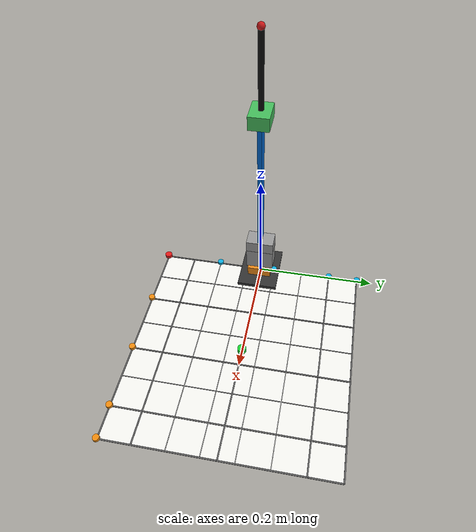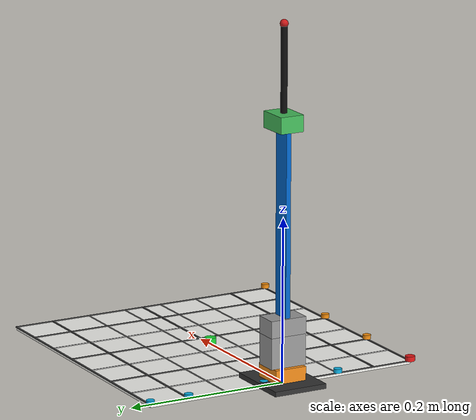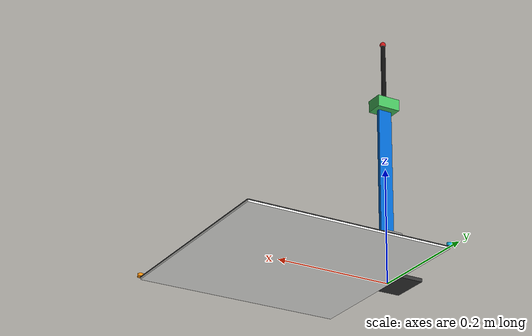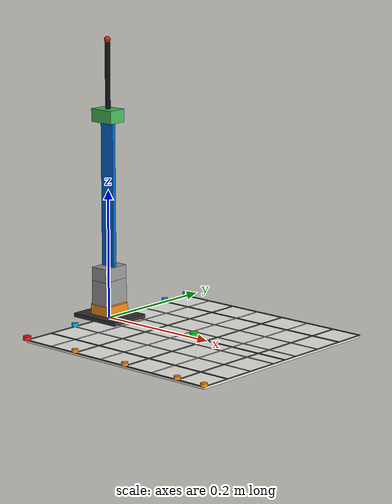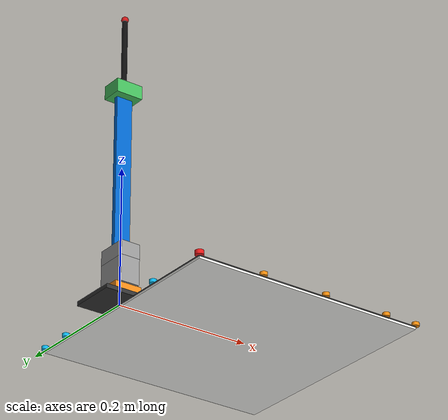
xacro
<?xml version="1.0" encoding="utf-8"?>

<robot name="Robot_2.0" xmlns:xacro="http://ros.org/wiki/xacro">

    <!-- use_ros2_control : 'true'  → include ros2_control hardware tags          -->
    <!-- use_mock_hardware: 'true'  → GenericSystem mock (sim), 'false' → Dynamixel -->
    <xacro:arg name="use_ros2_control"  default="false"/>
    <xacro:arg name="use_mock_hardware" default="false"/>

    <!-- ============ Materials (distinct colours) ============ -->
    <material name="dark_grey"> <color rgba="0.20 0.20 0.20 1.0"/></material>
    <material name="light_grey"><color rgba="0.60 0.60 0.60 1.0"/></material>
    <material name="blue">      <color rgba="0.00 0.40 0.80 1.0"/></material>
    <material name="green">     <color rgba="0.27 0.74 0.36 1.0"/></material>
    <material name="orange">    <color rgba="0.95 0.55 0.10 1.0"/></material>
    <material name="black">     <color rgba="0.05 0.05 0.05 1.0"/></material>
    <material name="red">       <color rgba="0.80 0.10 0.10 1.0"/></material>

    <!-- ============ World anchor ============ -->
    <link name="world"/>
    <joint name="world_to_base" type="fixed">
        <parent link="world"/>
        <child link="base_link"/>
        <origin xyz="0 0 0" rpy="0 0 0"/>
    </joint>

    <!-- ============ base_link : plate + riser + base (yaw) servo ============ -->
    <link name="base_link">
        <inertial>
            <origin xyz="0 0 0.03" rpy="0 0 0"/>
            <mass value="0.18"/>
            <inertia ixx="1.30e-04" iyy="1.30e-04" izz="8.10e-05" ixy="0" iyz="0" ixz="0"/>
        </inertial>
        <!-- base plate -->
        <visual>
            <origin xyz="0 0 0.003" rpy="0 0 0"/>
            <geometry><box size="0.086 0.068 0.006"/></geometry>
            <material name="dark_grey"/>
        </visual>
        <collision>
            <origin xyz="0 0 0.003" rpy="0 0 0"/>
            <geometry><box size="0.086 0.068 0.006"/></geometry>
        </collision>
        <!-- riser between plate and the first servo -->
        <visual>
            <origin xyz="0 0 0.0145" rpy="0 0 0"/>
            <geometry><box size="0.040 0.040 0.017"/></geometry>
            <material name="orange"/>
        </visual>
        <collision>
            <origin xyz="0 0 0.0145" rpy="0 0 0"/>
            <geometry><box size="0.040 0.040 0.017"/></geometry>
        </collision>
        <!-- servo1 body (base yaw motor, fixed part) -->
        <visual>
            <origin xyz="0 0 0.042" rpy="0 0 0"/>
            <geometry><box size="0.0285 0.046 0.0379"/></geometry>
            <material name="light_grey"/>
        </visual>
        <collision>
            <origin xyz="0 0 0.042" rpy="0 0 0"/>
            <geometry><box size="0.0285 0.046 0.0379"/></geometry>
        </collision>
    </link>

    <!-- joint3 : base rotator about Z (top of servo1) -->
    <joint name="joint3" type="revolute">
        <parent link="base_link"/>
        <child link="link1"/>
        <origin xyz="0 0 0.0609" rpy="0 0 0"/>
        <axis xyz="0 0 1"/>
        <limit lower="-1.5707963267948966" upper="1.5707963267948966" effort="1.5" velocity="5.236"/>
        <dynamics damping="0.01" friction="0.05"/>
    </joint>

    <!-- ============ link1 : shoulder servo body (yaws with joint1) ============ -->
    <link name="link1">
        <inertial>
            <origin xyz="0 0 0.0105" rpy="0 0 0"/>
            <mass value="0.05"/>
            <inertia ixx="1.0e-05" iyy="1.0e-05" izz="1.0e-05" ixy="0" iyz="0" ixz="0"/>
        </inertial>
        <visual>
            <origin xyz="0 0 0.0105" rpy="0 0 0"/>
            <geometry><box size="0.0285 0.046 0.021"/></geometry>
            <material name="light_grey"/>
        </visual>
        <collision>
            <origin xyz="0 0 0.0105" rpy="0 0 0"/>
            <geometry><box size="0.0285 0.046 0.021"/></geometry>
        </collision>
    </link>

    <!-- joint1 : arm about Y -->
    <joint name="joint1" type="revolute">
        <parent link="link1"/>
        <child link="link2"/>
        <origin xyz="0 0 0.0209" rpy="0 0 0"/>
        <axis xyz="0 1 0"/>
        <limit lower="-1.5707963267948966" upper="1.5707963267948966" effort="1.5" velocity="5.236"/>
        <dynamics damping="0.01" friction="0.05"/>
    </joint>

    <!-- ============ link2 : arm (box, points up +Z, 224 mm) ============ -->
    <link name="link2">
        <inertial>
            <origin xyz="0 0 0.112" rpy="0 0 0"/>
            <mass value="0.0776"/>
            <inertia ixx="4.71e-04" iyy="4.66e-04" izz="5.04e-06" ixy="0" iyz="0" ixz="0"/>
        </inertial>
        <visual>
            <origin xyz="0 0 0.112" rpy="0 0 0"/>
            <geometry><box size="0.024 0.006 0.224"/></geometry>
            <material name="blue"/>
        </visual>
        <collision>
            <origin xyz="0 0 0.112" rpy="0 0 0"/>
            <geometry><box size="0.024 0.006 0.224"/></geometry>
        </collision>
    </link>

    <!-- joint2 : end effector about Y (tip of the arm) -->
    <joint name="joint2" type="revolute">
        <parent link="link2"/>
        <child link="link3"/>
        <origin xyz="0 0 0.224" rpy="0 0 0"/>
        <axis xyz="0 1 0"/>
        <limit lower="-1.5707963267948966" upper="1.5707963267948966" effort="1.5" velocity="3.142"/>
        <dynamics damping="0.01" friction="0.05"/>
    </joint>

    <!-- ============ link3 : wrist bracket (box) ============ -->
    <link name="link3">
        <inertial>
            <origin xyz="0 0 0.01" rpy="0 0 0"/>
            <mass value="0.0335"/>
            <inertia ixx="3.25e-06" iyy="8.34e-06" izz="9.92e-06" ixy="0" iyz="0" ixz="0"/>
        </inertial>
        <visual>
            <origin xyz="0 0 0.01" rpy="0 0 0"/>
            <geometry><box size="0.040 0.030 0.020"/></geometry>
            <material name="green"/>
        </visual>
        <collision>
            <origin xyz="0 0 0.01" rpy="0 0 0"/>
            <geometry><box size="0.040 0.030 0.020"/></geometry>
        </collision>
    </link>

    <!-- ============ Pen on the end effector ============ -->
    <joint name="joint_marker" type="fixed">
        <parent link="link3"/>
        <child link="marker_link"/>
        <origin xyz="0 0 0.020" rpy="0 0 0"/>
    </joint>

    <link name="marker_link">
        <inertial>
            <origin xyz="0 0 0.0525" rpy="0 0 0"/>
            <mass value="0.005"/>
            <inertia ixx="1e-06" iyy="1e-06" izz="1e-07" ixy="0" iyz="0" ixz="0"/>
        </inertial>
        <visual>
            <origin xyz="0 0 0.0525" rpy="0 0 0"/>
            <geometry><cylinder radius="0.004" length="0.105"/></geometry>
            <material name="black"/>
        </visual>
        <collision>
            <origin xyz="0 0 0.0525" rpy="0 0 0"/>
            <geometry><cylinder radius="0.004" length="0.105"/></geometry>
        </collision>
    </link>

    <joint name="joint_tool" type="fixed">
        <parent link="marker_link"/>
        <child link="end_effector"/>
        <origin xyz="0 0 0.105" rpy="0 0 0"/>
    </joint>

    <link name="end_effector">
        <inertial>
            <origin xyz="0 0 0" rpy="0 0 0"/>
            <mass value="0.001"/>
            <inertia ixx="0" iyy="0" izz="0" ixy="0" iyz="0" ixz="0"/>
        </inertial>
        <visual>
            <origin xyz="0 0 0" rpy="0 0 0"/>
            <geometry><sphere radius="0.005"/></geometry>
            <material name="red"/>
        </visual>
    </link>

    <!-- Drawing board — 350×350 mm workspace (from seminar spec).       -->
    <!-- Board origin = bottom-left corner (closest to robot base).      -->
    <!--   World frame: board spans x[0 .. 0.35], y[-0.175 .. 0.175]    -->
    <!--   Drawing surface is at z=0 (floor level, same as robot base).  -->
    <!-- Grid: 50 mm minor (light grey), 100 mm major (dark grey).       -->
    <!-- Coordinate markers (cylinders, 8 mm dia):                       -->
    <!--   RED   — board origin (0, 0)   = world (0.000, -0.175)         -->
    <!--   ORANGE— X-axis 100 mm steps   = world (0.100, -0.175) …      -->
    <!--   CYAN  — Y-axis 100 mm steps   = world (0.000, -0.075) …      -->
    <!--   GREEN — board centre           = world (0.175,  0.000)         -->
    <link name="drawing_board">
        <!-- ── board surface ────────────────────────────────────────── -->
        <visual>
            <origin xyz="0.175 0 -0.0015" rpy="0 0 0"/>
            <geometry><box size="0.350 0.350 0.003"/></geometry>
            <material name="board_white"><color rgba="0.97 0.97 0.95 1.0"/></material>
        </visual>
        <collision>
            <origin xyz="0.175 0 -0.0015" rpy="0 0 0"/>
            <geometry><box size="0.350 0.350 0.003"/></geometry>
        </collision>

        <!-- ── minor grid lines (50 mm, light grey) ─────────────────── -->
        <!-- lines parallel to Y (at X = 0.05, 0.15, 0.25) -->
        <visual><origin xyz="0.050 0.000 0.0005" rpy="0 0 0"/><geometry><box size="0.001 0.350 0.001"/></geometry><material name="grid_minor"><color rgba="0.75 0.75 0.75 1.0"/></material></visual>
        <visual><origin xyz="0.150 0.000 0.0005" rpy="0 0 0"/><geometry><box size="0.001 0.350 0.001"/></geometry><material name="grid_minor"><color rgba="0.75 0.75 0.75 1.0"/></material></visual>
        <visual><origin xyz="0.250 0.000 0.0005" rpy="0 0 0"/><geometry><box size="0.001 0.350 0.001"/></geometry><material name="grid_minor"><color rgba="0.75 0.75 0.75 1.0"/></material></visual>
        <!-- lines parallel to X (at Y = ±0.075, ±0.025) -->
        <visual><origin xyz="0.175 -0.075 0.0005" rpy="0 0 0"/><geometry><box size="0.350 0.001 0.001"/></geometry><material name="grid_minor"><color rgba="0.75 0.75 0.75 1.0"/></material></visual>
        <visual><origin xyz="0.175 -0.025 0.0005" rpy="0 0 0"/><geometry><box size="0.350 0.001 0.001"/></geometry><material name="grid_minor"><color rgba="0.75 0.75 0.75 1.0"/></material></visual>
        <visual><origin xyz="0.175  0.025 0.0005" rpy="0 0 0"/><geometry><box size="0.350 0.001 0.001"/></geometry><material name="grid_minor"><color rgba="0.75 0.75 0.75 1.0"/></material></visual>
        <visual><origin xyz="0.175  0.075 0.0005" rpy="0 0 0"/><geometry><box size="0.350 0.001 0.001"/></geometry><material name="grid_minor"><color rgba="0.75 0.75 0.75 1.0"/></material></visual>

        <!-- ── major grid lines (100 mm, dark grey) ──────────────────── -->
        <!-- lines parallel to Y (at X = 0, 0.10, 0.20, 0.30, 0.35) -->
        <visual><origin xyz="0.000 0.000 0.0007" rpy="0 0 0"/><geometry><box size="0.002 0.350 0.001"/></geometry><material name="grid_major"><color rgba="0.40 0.40 0.40 1.0"/></material></visual>
        <visual><origin xyz="0.100 0.000 0.0007" rpy="0 0 0"/><geometry><box size="0.002 0.350 0.001"/></geometry><material name="grid_major"><color rgba="0.40 0.40 0.40 1.0"/></material></visual>
        <visual><origin xyz="0.200 0.000 0.0007" rpy="0 0 0"/><geometry><box size="0.002 0.350 0.001"/></geometry><material name="grid_major"><color rgba="0.40 0.40 0.40 1.0"/></material></visual>
        <visual><origin xyz="0.300 0.000 0.0007" rpy="0 0 0"/><geometry><box size="0.002 0.350 0.001"/></geometry><material name="grid_major"><color rgba="0.40 0.40 0.40 1.0"/></material></visual>
        <visual><origin xyz="0.350 0.000 0.0007" rpy="0 0 0"/><geometry><box size="0.002 0.350 0.001"/></geometry><material name="grid_major"><color rgba="0.40 0.40 0.40 1.0"/></material></visual>
        <!-- lines parallel to X (at Y = -0.175, -0.125, 0, 0.125, 0.175) -->
        <visual><origin xyz="0.175 -0.175 0.0007" rpy="0 0 0"/><geometry><box size="0.350 0.002 0.001"/></geometry><material name="grid_major"><color rgba="0.40 0.40 0.40 1.0"/></material></visual>
        <visual><origin xyz="0.175 -0.125 0.0007" rpy="0 0 0"/><geometry><box size="0.350 0.002 0.001"/></geometry><material name="grid_major"><color rgba="0.40 0.40 0.40 1.0"/></material></visual>
        <visual><origin xyz="0.175  0.000 0.0007" rpy="0 0 0"/><geometry><box size="0.350 0.002 0.001"/></geometry><material name="grid_major"><color rgba="0.40 0.40 0.40 1.0"/></material></visual>
        <visual><origin xyz="0.175  0.125 0.0007" rpy="0 0 0"/><geometry><box size="0.350 0.002 0.001"/></geometry><material name="grid_major"><color rgba="0.40 0.40 0.40 1.0"/></material></visual>
        <visual><origin xyz="0.175  0.175 0.0007" rpy="0 0 0"/><geometry><box size="0.350 0.002 0.001"/></geometry><material name="grid_major"><color rgba="0.40 0.40 0.40 1.0"/></material></visual>

        <!-- ── coordinate markers (cylinders, r=4 mm, h=4 mm) ────────── -->
        <!-- RED — board origin (0 mm, 0 mm) = world (0.000, -0.175) -->
        <visual><origin xyz="0.000 -0.175 0.004" rpy="0 0 0"/><geometry><cylinder radius="0.006" length="0.006"/></geometry><material name="marker_red"><color rgba="0.9 0.1 0.1 1.0"/></material></visual>
        <!-- ORANGE — X axis: 100, 200, 300, 350 mm -->
        <visual><origin xyz="0.100 -0.175 0.004" rpy="0 0 0"/><geometry><cylinder radius="0.005" length="0.005"/></geometry><material name="marker_orange"><color rgba="0.95 0.55 0.05 1.0"/></material></visual>
        <visual><origin xyz="0.200 -0.175 0.004" rpy="0 0 0"/><geometry><cylinder radius="0.005" length="0.005"/></geometry><material name="marker_orange"><color rgba="0.95 0.55 0.05 1.0"/></material></visual>
        <visual><origin xyz="0.300 -0.175 0.004" rpy="0 0 0"/><geometry><cylinder radius="0.005" length="0.005"/></geometry><material name="marker_orange"><color rgba="0.95 0.55 0.05 1.0"/></material></visual>
        <visual><origin xyz="0.350 -0.175 0.004" rpy="0 0 0"/><geometry><cylinder radius="0.005" length="0.005"/></geometry><material name="marker_orange"><color rgba="0.95 0.55 0.05 1.0"/></material></visual>
        <!-- CYAN — Y axis: 100, 200, 300, 350 mm from board origin -->
        <visual><origin xyz="0.000 -0.075 0.004" rpy="0 0 0"/><geometry><cylinder radius="0.005" length="0.005"/></geometry><material name="marker_cyan"><color rgba="0.05 0.70 0.90 1.0"/></material></visual>
        <visual><origin xyz="0.000  0.025 0.004" rpy="0 0 0"/><geometry><cylinder radius="0.005" length="0.005"/></geometry><material name="marker_cyan"><color rgba="0.05 0.70 0.90 1.0"/></material></visual>
        <visual><origin xyz="0.000  0.125 0.004" rpy="0 0 0"/><geometry><cylinder radius="0.005" length="0.005"/></geometry><material name="marker_cyan"><color rgba="0.05 0.70 0.90 1.0"/></material></visual>
        <visual><origin xyz="0.000  0.175 0.004" rpy="0 0 0"/><geometry><cylinder radius="0.005" length="0.005"/></geometry><material name="marker_cyan"><color rgba="0.05 0.70 0.90 1.0"/></material></visual>
        <!-- GREEN — board centre (175, 175) = world (0.175, 0.000) -->
        <visual><origin xyz="0.175  0.000 0.005" rpy="0 0 0"/><geometry><cylinder radius="0.007" length="0.008"/></geometry><material name="marker_green"><color rgba="0.1 0.85 0.2 1.0"/></material></visual>

        <inertial>
            <origin xyz="0.175 0 -0.0015" rpy="0 0 0"/>
            <mass value="0.5"/>
            <inertia ixx="0.005" iyy="0.005" izz="0.010" ixy="0" iyz="0" ixz="0"/>
        </inertial>
    </link>

    <joint name="world_to_board" type="fixed">
        <parent link="world"/>
        <child link="drawing_board"/>
        <origin xyz="0 0 0" rpy="0 0 0"/>
    </joint>

    <!-- ============ ros2_control hardware interface ============ -->
    <xacro:if value="$(arg use_ros2_control)">
        <ros2_control name="robot_2_hardware" type="system">
            <hardware>
                <!-- Simulation: generic mock that mirrors commands to states instantly -->
                <xacro:if value="$(arg use_mock_hardware)">
                    <plugin>mock_components/GenericSystem</plugin>
                </xacro:if>
                <!-- Real robot: Dynamixel XL-430 servos -->
                <xacro:unless value="$(arg use_mock_hardware)">
                    <plugin>dynamixel_hardware/DynamixelHardware</plugin>
                    <param name="usb_port">/dev/ttyUSB0</param>
                    <param name="baud_rate">1000000</param>
                </xacro:unless>
            </hardware>
            <!-- joint3 = base rotator, physical servo ID 13 -->
            <joint name="joint3">
                <param name="id">13</param>
                <command_interface name="position"/>
                <command_interface name="velocity"/>
                <state_interface name="position"/>
                <state_interface name="velocity"/>
                <state_interface name="effort"/>
                <param name="Position P Gain">640</param>
                <param name="Position I Gain">0</param>
                <param name="Position D Gain">3600</param>
                <param name="Goal PWM">250</param>
            </joint>
            <!-- joint1 = arm (shoulder), physical servo ID 11 -->
            <joint name="joint1">
                <param name="id">11</param>
                <command_interface name="position"/>
                <command_interface name="velocity"/>
                <state_interface name="position"/>
                <state_interface name="velocity"/>
                <state_interface name="effort"/>
                <param name="Position P Gain">640</param>
                <param name="Position I Gain">0</param>
                <param name="Position D Gain">3600</param>
                <param name="Goal PWM">250</param>
            </joint>
            <!-- joint2 = hand (end effector), physical servo ID 12 -->
            <joint name="joint2">
                <param name="id">12</param>
                <command_interface name="position"/>
                <command_interface name="velocity"/>
                <state_interface name="position"/>
                <state_interface name="velocity"/>
                <state_interface name="effort"/>
                <param name="Position P Gain">640</param>
                <param name="Position I Gain">0</param>
                <param name="Position D Gain">3600</param>
                <param name="Goal PWM">250</param>
            </joint>
        </ros2_control>
    </xacro:if>

</robot>
